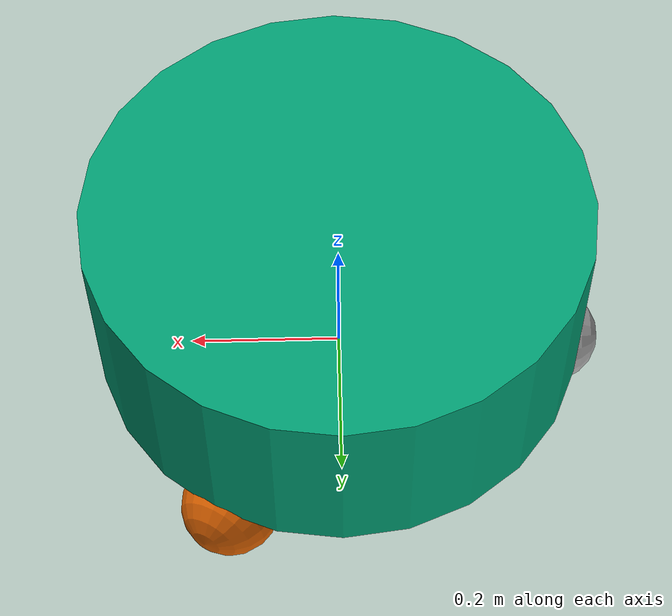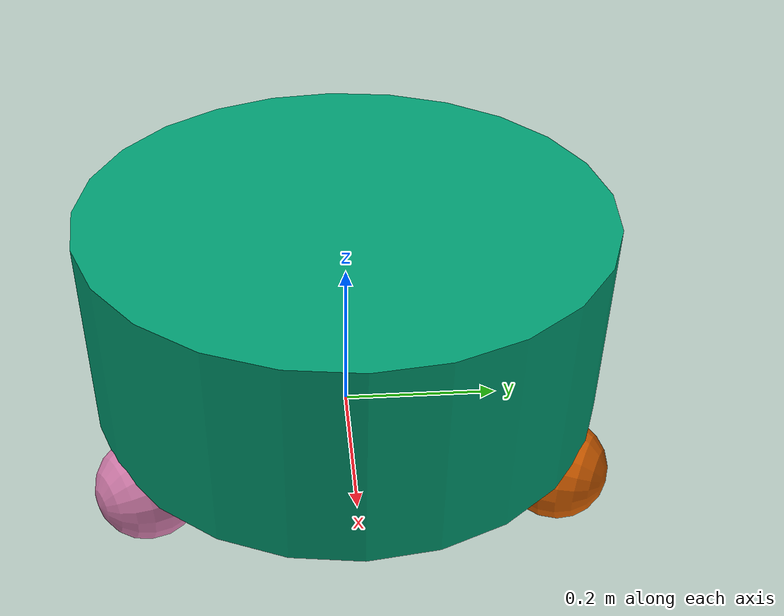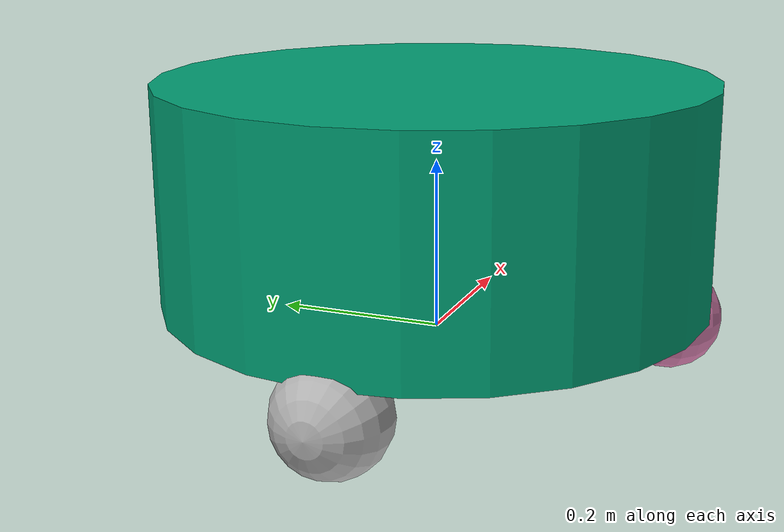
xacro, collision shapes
<?xml version="1.0"?>
<robot xmlns:xacro="http://www.ros.org/wiki/xacro" name="hb_bot_scaled">

    <xacro:property name="s" value="4.0" /> # Scale factor for the robot model
    <xacro:property name="s3" value="${s*s*s}" />
    <xacro:property name="s5" value="${s*s*s*s*s}" />

    <xacro:macro name="cylinder_inertia" params="m r h">
        <inertia
        ixx="${m*(3*r*r + h*h)/12}" ixy="0" ixz="0"
        iyy="${m*(3*r*r + h*h)/12}" iyz="0"
        izz="${m*r*r/2}" />
    </xacro:macro>

    <xacro:macro name="rim_macro" params="name x y z rpy">
        <link name="rim_${name}_link">
            <inertial>
                <origin xyz="0 0 ${-0.000343*s}" />
                <mass value="${0.00835758*s3}" />
                <inertia
                    ixx="${6.63684e-07*s5}" ixy="0" ixz="0"
                    iyy="${6.63684e-07*s5}" iyz="0"
                    izz="${9.40333e-07*s5}" />
            </inertial>
            <visual>
                <geometry>
                    <mesh
                        filename="file:///home/deepanshu/kk_ws/src/kk_bot/ext_files/meshes/wheels.dae"
                        scale="${s} ${s} ${s}" />
                </geometry>
            </visual>
            <collision>
                <geometry>
                    <sphere radius="${0.016*s}" />
                </geometry>
            </collision>
        </link>
        <joint name="rim_${name}_joint" type="continuous">
            <parent link="base_link" />
            <child link="rim_${name}_link" />
            <axis xyz="0 0 1" />
            <limit effort="${1.0*s3}" velocity="${10.0*s}" lower="-1.79769e+308" upper="1.79769e+308" />
            <origin xyz="${x*s} ${y*s} ${z*s}" rpy="${rpy}" />
        </joint>
    </xacro:macro>

    <link name="base_footprint" />
    <link name="root_link" />

    <link name="base_link">
        <visual>
            <origin xyz="0 0 0" rpy="0 0 0" />
            <geometry>
                <mesh
                    filename="file:///home/deepanshu/kk_ws/src/kk_bot/ext_files/meshes/hb_crystal.dae"
                    scale="${s} ${s} ${s}" />
            </geometry>
        </visual>

        <collision name="base_link_collision">
            <origin xyz="0 0 ${0.042*s}" rpy="0 0 0" />
            <geometry>
                <cylinder length="${0.064*s}" radius="${0.08*s}" />
            </geometry>
        </collision>

        <inertial>
            <origin xyz="0 0 0" rpy="0 0 0" />
            <mass value="${0.15*s3}" />
            <xacro:cylinder_inertia m="${0.3*s3}" r="${0.074*s}" h="${0.03*s}" />
        </inertial>
    </link>

    <joint name="footprint_to_root" type="fixed">
        <parent link="base_footprint" />
        <child link="root_link" />
        <origin xyz="0 0 0" rpy="0 0 0" />
    </joint>

    <joint name="root_to_base" type="fixed">
        <parent link="root_link" />
        <child link="base_link" />
        <origin xyz="0 0 0" rpy="0 0 0" />
    </joint>

    <link name="chassis_link" />
    <link name="arm_root_link" />

    <joint name="base_to_chassis" type="fixed">
        <parent link="base_link" />
        <child link="chassis_link" />
        <origin xyz="0 0 ${0.0795*s}" rpy="0 0 0" />
    </joint>

    <joint name="chassis_to_arm_base" type="fixed">
        <parent link="chassis_link" />
        <child link="arm_root_link" />
        <origin xyz="${0.075*s} 0 0" rpy="0 0 0" />
    </joint>

    <xacro:rim_macro name="left"
        x="0.03600001399230441" y="0.06235382099401676" z="-0.001"
        rpy="1.570796326794896 0 -0.523599" />
    <xacro:rim_macro name="right"
        x="0.03600001399230441" y="-0.06235382099401676" z="-0.001"
        rpy="1.570796326794896 0 0.523599" />
    <xacro:rim_macro name="back"
        x="-0.072" y="0" z="0"
        rpy="1.570796326794896 0 1.570796326794896" />

    <gazebo>
        <plugin filename="libgazebo_ros_planar_move.so"
                name="gazebo_ros_planar_move">
            <ros>
                <remapping>cmd_vel:=/cmd_vel</remapping>
            </ros>
            <update_rate>100</update_rate>
        </plugin>
    </gazebo>

</robot>
